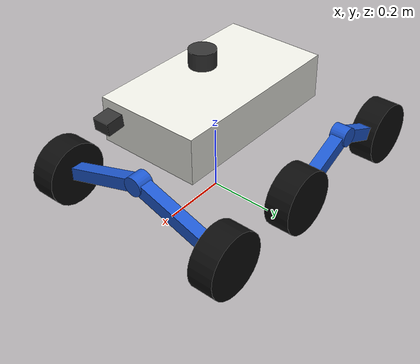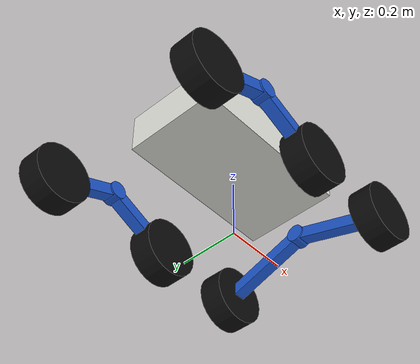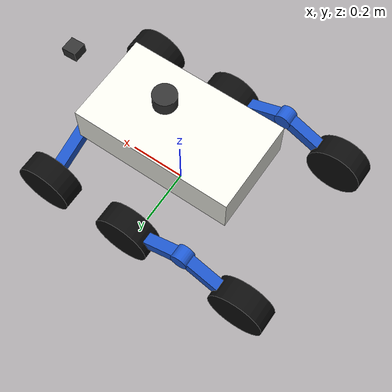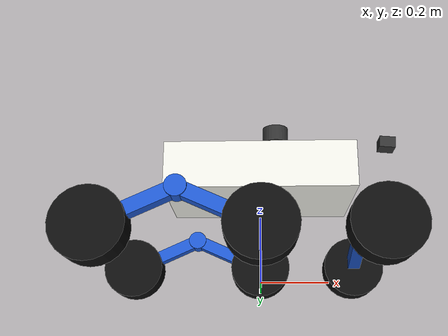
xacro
<?xml version="1.0"?>
<robot name="mars_rover" xmlns:xacro="http://www.ros.org/wiki/xacro">

  <xacro:include filename="$(find mars_rover_description)/urdf/materials.xacro"/>
  <xacro:include filename="$(find mars_rover_description)/urdf/triple_rocker.xacro"/>
  <xacro:include filename="$(find mars_rover_description)/urdf/sensors.xacro"/>

  <!-- Chassis geometry -->
  <xacro:property name="chassis_length" value="0.56"/>
  <xacro:property name="chassis_width"  value="0.32"/>
  <xacro:property name="chassis_height" value="0.14"/>
  <xacro:property name="chassis_mass"   value="10.0"/>

  <!-- Suspension Y offsets from centreline -->
  <xacro:property name="suspension_y"   value="0.30"/>

  <!-- ── BASE FOOTPRINT ──────────────────────────────────────────── -->
  <!-- Tiny inertia required: gz-sim treats zero-mass canonical links as
       static/weightless, which disables gravity for the entire model. -->
  <link name="base_footprint">
    <inertial>
      <mass value="0.001"/>
      <inertia ixx="0.000001" ixy="0" ixz="0"
               iyy="0.000001" iyz="0"
               izz="0.000001"/>
    </inertial>
  </link>

  <joint name="base_footprint_joint" type="fixed">
    <parent link="base_footprint"/>
    <child  link="base_link"/>
    <!-- z = wheel_radius(0.10) + rear_pivot_drop(0.12) + rear_arm_z_drop(0.10) = 0.32 m
         ensures wheel centres sit at exactly wheel_radius above footprint -->
    <origin xyz="0 0 0.32" rpy="0 0 0"/>
  </joint>

  <!-- ── CHASSIS / BASE_LINK ─────────────────────────────────────── -->
  <link name="base_link">
    <visual>
      <origin xyz="0 0 0" rpy="0 0 0"/>
      <geometry>
        <box size="${chassis_length} ${chassis_width} ${chassis_height}"/>
      </geometry>
      <material name="rover_chassis"/>
    </visual>
    <collision>
      <origin xyz="0 0 0" rpy="0 0 0"/>
      <geometry>
        <box size="${chassis_length} ${chassis_width} ${chassis_height}"/>
      </geometry>
    </collision>
    <inertial>
      <!-- CoM offset: forward sensors (lidar 0.2kg×0.05m + camera 0.1kg×0.30m) = +0.056 kg·m
           offset = -0.056 / 10.0 ≈ -0.006 m rearward -->
      <origin xyz="-0.006 0 0" rpy="0 0 0"/>
      <mass value="${chassis_mass}"/>
      <inertia
        ixx="${chassis_mass*(chassis_width*chassis_width + chassis_height*chassis_height)/12}"
        ixy="0" ixz="0"
        iyy="${chassis_mass*(chassis_length*chassis_length + chassis_height*chassis_height)/12}"
        iyz="0"
        izz="${chassis_mass*(chassis_length*chassis_length + chassis_width*chassis_width)/12}"/>
    </inertial>
  </link>

  <!-- ── LEFT REAR ROCKER ──────────────────────────────────────────── -->
  <xacro:rear_rocker_side
    side="left"
    y_offset="${suspension_y}"
    flip="1.0"/>

  <!-- ── RIGHT REAR ROCKER ─────────────────────────────────────────── -->
  <xacro:rear_rocker_side
    side="right"
    y_offset="${-suspension_y}"
    flip="-1.0"/>
  <!-- Note: front_rocker_link + left_front/right_front wheels are
       instantiated automatically by the triple_rocker.xacro include. -->

  <!-- ── GAZEBO PLUGINS ─────────────────────────────────────────── -->

  <!-- Chassis colour override for Gazebo (white-cream, high contrast) -->
  <gazebo reference="base_link">
    <visual>
      <material>
        <ambient>0.93 0.93 0.90 1</ambient>
        <diffuse>0.93 0.93 0.90 1</diffuse>
        <specular>0.4 0.4 0.4 1</specular>
      </material>
    </visual>
    <!-- Contact: low friction so the chassis can slide over terrain if it bottoms out -->
    <mu1>0.3</mu1>
    <mu2>0.3</mu2>
    <kp>500000.0</kp>
    <kd>50.0</kd>
  </gazebo>

  <gazebo>
    <self_collide>true</self_collide>
  </gazebo>

  <!-- ── Steering position controllers (PID) ── -->
  <xacro:macro name="steer_ctrl" params="wheel_name">
    <gazebo>
      <plugin filename="libgz-sim-joint-position-controller-system.so"
              name="gz::sim::systems::JointPositionController">
        <joint_name>${wheel_name}_steer_joint</joint_name>
        <topic>/gz/steer/${wheel_name}</topic>
        <p_gain>10.0</p_gain>
        <i_gain>0.1</i_gain>
        <d_gain>0.5</d_gain>
        <i_max>1.0</i_max>
        <i_min>-1.0</i_min>
        <cmd_max>10.0</cmd_max>
        <cmd_min>-10.0</cmd_min>
      </plugin>
    </gazebo>
  </xacro:macro>

  <!-- ── Drive velocity controllers ── -->
  <xacro:macro name="drive_ctrl" params="wheel_name">
    <gazebo>
      <plugin filename="libgz-sim-joint-controller-system.so"
              name="gz::sim::systems::JointController">
        <joint_name>${wheel_name}_wheel_joint</joint_name>
        <topic>/gz/drive/${wheel_name}</topic>
        <use_force_commands>false</use_force_commands>
      </plugin>
    </gazebo>
  </xacro:macro>

  <xacro:steer_ctrl wheel_name="left_front"/>
  <xacro:steer_ctrl wheel_name="right_front"/>
  <xacro:steer_ctrl wheel_name="left_mid"/>
  <xacro:steer_ctrl wheel_name="right_mid"/>
  <xacro:steer_ctrl wheel_name="left_rear"/>
  <xacro:steer_ctrl wheel_name="right_rear"/>

  <xacro:drive_ctrl wheel_name="left_front"/>
  <xacro:drive_ctrl wheel_name="right_front"/>
  <xacro:drive_ctrl wheel_name="left_mid"/>
  <xacro:drive_ctrl wheel_name="right_mid"/>
  <xacro:drive_ctrl wheel_name="left_rear"/>
  <xacro:drive_ctrl wheel_name="right_rear"/>

  <!-- Joint state publisher (publishes all rocker/wheel joint states) -->
  <gazebo>
    <plugin filename="libgz-sim-joint-state-publisher-system.so"
            name="gz::sim::systems::JointStatePublisher">
      <topic>joint_states</topic>
    </plugin>
  </gazebo>

</robot>

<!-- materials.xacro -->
<robot xmlns:xacro="http://www.ros.org/wiki/xacro">

  <!-- Rover body: bright white-cream for high contrast against Mars terrain -->
  <material name="rover_chassis">
    <color rgba="0.93 0.93 0.90 1.0"/>
  </material>
  <!-- Suspension arms: vivid cobalt blue — stands out against orange terrain -->
  <material name="rover_suspension">
    <color rgba="0.12 0.35 0.82 1.0"/>
  </material>
  <material name="dark_grey">
    <color rgba="0.2 0.2 0.2 1.0"/>
  </material>
  <material name="light_grey">
    <color rgba="0.6 0.6 0.6 1.0"/>
  </material>
  <material name="black">
    <color rgba="0.05 0.05 0.05 1.0"/>
  </material>
  <material name="blue">
    <color rgba="0.1 0.4 0.9 1.0"/>
  </material>
  <material name="red">
    <color rgba="0.9 0.1 0.1 1.0"/>
  </material>
  <!-- Keep mars_orange for any external references -->
  <material name="mars_orange">
    <color rgba="0.78 0.42 0.14 1.0"/>
  </material>

</robot>

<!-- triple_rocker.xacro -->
<robot xmlns:xacro="http://www.ros.org/wiki/xacro">

  <xacro:include filename="$(find mars_rover_description)/urdf/wheel.xacro"/>

  <!-- ── Rear side rocker geometry ──────────────────────────────────── -->
  <!-- Each rear rocker is V-shaped (viewed from side); pivot is the apex -->
  <xacro:property name="rear_pivot_x"     value="-0.22"/>  <!-- chassis X of pivot (−arm_reach → mid wheel at x=0) -->
  <xacro:property name="rear_pivot_drop"  value="0.12"/>   <!-- Z below base_link (clears chassis bottom)           -->
  <xacro:property name="rear_arm_x_reach" value="0.22"/>   <!-- horizontal arm reach                                -->
  <xacro:property name="rear_arm_z_drop"  value="0.10"/>   <!-- vertical drop pivot→wheel                          -->
  <!-- derived -->
  <xacro:property name="rear_arm_length"
    value="${sqrt(rear_arm_x_reach**2 + rear_arm_z_drop**2)}"/>
  <xacro:property name="rear_arm_pitch"
    value="${atan2(rear_arm_z_drop, rear_arm_x_reach)}"/>

  <!-- ── Front rocker geometry ──────────────────────────────────────── -->
  <!-- Single transverse rocker; pivot on chassis front centre; V-shaped
       (viewed from front) — left and right arms angle outward and down -->
  <xacro:property name="front_pivot_x"     value="0.32"/>   <!-- extruded past chassis front (front face at +0.28) -->
  <xacro:property name="front_pivot_drop"  value="0.12"/>   <!-- Z below base_link (matches rear_pivot_drop)       -->
  <xacro:property name="front_arm_y_reach" value="0.30"/>   <!-- matches suspension_y                              -->
  <xacro:property name="front_arm_z_drop"  value="0.10"/>   <!-- vertical drop pivot→wheel                        -->
  <!-- derived -->
  <xacro:property name="front_arm_length"
    value="${sqrt(front_arm_y_reach**2 + front_arm_z_drop**2)}"/>
  <xacro:property name="front_arm_pitch"
    value="${atan2(front_arm_z_drop, front_arm_y_reach)}"/>

  <!-- ── Shared arm cross-section & hub ─────────────────────────────── -->
  <xacro:property name="arm_w"    value="0.04"/>  <!-- arm box width  -->
  <xacro:property name="arm_h"    value="0.04"/>  <!-- arm box height -->
  <xacro:property name="hub_r"    value="0.030"/> <!-- pivot hub cylinder radius -->
  <xacro:property name="hub_len"  value="0.05"/>  <!-- pivot hub cylinder length -->
  <xacro:property name="rear_rocker_mass"  value="0.6"/>
  <xacro:property name="front_rocker_mass" value="0.5"/>

  <xacro:macro name="rear_rocker_side" params="side y_offset flip">

    <link name="${side}_rear_rocker_link">
      <!-- pivot hub: cylinder aligned with Y axis (joint axis) -->
      <visual>
        <origin xyz="0 0 0" rpy="${pi/2} 0 0"/>
        <geometry><cylinder radius="${hub_r}" length="${hub_len}"/></geometry>
        <material name="rover_suspension"/>
      </visual>

      <!-- forward arm: pivot → mid wheel (forward and downward) -->
      <!-- box centre at midpoint; pitched so +X axis points toward mid wheel -->
      <visual>
        <origin xyz="${rear_arm_x_reach/2} 0 ${-rear_arm_z_drop/2}"
                rpy="0 ${rear_arm_pitch} 0"/>
        <geometry><box size="${rear_arm_length} ${arm_w} ${arm_h}"/></geometry>
        <material name="rover_suspension"/>
      </visual>

      <!-- rearward arm: pivot → rear wheel (backward and downward) -->
      <visual>
        <origin xyz="${-rear_arm_x_reach/2} 0 ${-rear_arm_z_drop/2}"
                rpy="0 ${pi - rear_arm_pitch} 0"/>
        <geometry><box size="${rear_arm_length} ${arm_w} ${arm_h}"/></geometry>
        <material name="rover_suspension"/>
      </visual>

      <collision>
        <origin xyz="0 0 ${-rear_arm_z_drop/2}" rpy="0 0 0"/>
        <geometry>
          <box size="${2*rear_arm_x_reach} ${arm_w} ${rear_arm_z_drop}"/>
        </geometry>
      </collision>
      <inertial>
        <mass value="${rear_rocker_mass}"/>
        <inertia
          ixx="${rear_rocker_mass*(arm_w**2            + rear_arm_z_drop**2)/12}"
          ixy="0" ixz="0"
          iyy="${rear_rocker_mass*((2*rear_arm_x_reach)**2 + rear_arm_z_drop**2)/12}"
          iyz="0"
          izz="${rear_rocker_mass*((2*rear_arm_x_reach)**2 + arm_w**2)/12}"/>
      </inertial>
    </link>

    <!-- Pivot anchored to chassis side, revolute Y (pitch) -->
    <joint name="${side}_rear_rocker_joint" type="revolute">
      <parent link="base_link"/>
      <child  link="${side}_rear_rocker_link"/>
      <origin xyz="${rear_pivot_x} ${y_offset} ${-rear_pivot_drop}" rpy="0 0 0"/>
      <axis xyz="0 1 0"/>
      <limit lower="-0.35" upper="0.35" effort="30" velocity="2"/>
      <dynamics damping="30.0" friction="2.0"/>
    </joint>

    <!-- Spring return to level -->
    <gazebo reference="${side}_rear_rocker_joint">
      <axis>
        <dynamics>
          <spring_reference>0</spring_reference>
          <spring_stiffness>300</spring_stiffness>
          <damping>30.0</damping>
          <friction>2.0</friction>
        </dynamics>
      </axis>
    </gazebo>

    <!-- Gazebo colour: cobalt blue -->
    <gazebo reference="${side}_rear_rocker_link">
      <visual>
        <material>
          <ambient>0.12 0.35 0.82 1</ambient>
          <diffuse>0.12 0.35 0.82 1</diffuse>
          <specular>0.2 0.2 0.2 1</specular>
        </material>
      </visual>
      <!-- Rocker arms can drag on terrain: low friction, stiff contact -->
      <mu1>0.3</mu1>
      <mu2>0.3</mu2>
      <kp>500000.0</kp>
      <kd>50.0</kd>
      <collision>
        <surface>
          <contact>
            <collide_bitmask>0x0001</collide_bitmask>
          </contact>
        </surface>
      </collision>
    </gazebo>

    <!-- Mid wheel at forward arm end -->
    <xacro:wheel prefix="${side}_mid"
                 parent="${side}_rear_rocker_link"
                 x="${rear_arm_x_reach}" y="0" z="${-rear_arm_z_drop}"
                 flip="${flip}"/>

    <!-- Rear wheel at rearward arm end -->
    <xacro:wheel prefix="${side}_rear"
                 parent="${side}_rear_rocker_link"
                 x="${-rear_arm_x_reach}" y="0" z="${-rear_arm_z_drop}"
                 flip="${flip}"/>

  </xacro:macro>

  <link name="front_rocker_link">
    <!-- pivot hub: cylinder aligned with X axis (joint axis) -->
    <visual>
      <origin xyz="0 0 0" rpy="0 ${pi/2} 0"/>
      <geometry><cylinder radius="${hub_r}" length="${hub_len}"/></geometry>
      <material name="rover_suspension"/>
    </visual>

    <!-- left arm: pivot → left_front wheel (leftward and downward)
         rpy = (0, front_arm_pitch, π/2) orients box along (0,+1,-slope) -->
    <visual>
      <origin xyz="0 ${front_arm_y_reach/2} ${-front_arm_z_drop/2}"
              rpy="0 ${front_arm_pitch} ${pi/2}"/>
      <geometry><box size="${front_arm_length} ${arm_w} ${arm_h}"/></geometry>
      <material name="rover_suspension"/>
    </visual>

    <!-- right arm: pivot → right_front wheel (rightward and downward) -->
    <visual>
      <origin xyz="0 ${-front_arm_y_reach/2} ${-front_arm_z_drop/2}"
              rpy="0 ${front_arm_pitch} ${-pi/2}"/>
      <geometry><box size="${front_arm_length} ${arm_w} ${arm_h}"/></geometry>
      <material name="rover_suspension"/>
    </visual>

    <collision>
      <origin xyz="0 0 ${-front_arm_z_drop/2}" rpy="0 0 0"/>
      <geometry>
        <box size="${arm_h} ${2*front_arm_y_reach} ${front_arm_z_drop}"/>
      </geometry>
    </collision>
    <inertial>
      <mass value="${front_rocker_mass}"/>
      <inertia
        ixx="${front_rocker_mass*((2*front_arm_y_reach)**2 + front_arm_z_drop**2)/12}"
        ixy="0" ixz="0"
        iyy="${front_rocker_mass*(arm_h**2                 + front_arm_z_drop**2)/12}"
        iyz="0"
        izz="${front_rocker_mass*((2*front_arm_y_reach)**2 + arm_h**2)/12}"/>
    </inertial>
  </link>

  <!-- Pivot at chassis front centre, revolute X (roll) -->
  <joint name="front_rocker_joint" type="revolute">
    <parent link="base_link"/>
    <child  link="front_rocker_link"/>
    <origin xyz="${front_pivot_x} 0 ${-front_pivot_drop}" rpy="0 0 0"/>
    <axis xyz="1 0 0"/>
    <limit lower="-0.35" upper="0.35" effort="30" velocity="2"/>
    <dynamics damping="20.0" friction="1.5"/>
  </joint>

  <!-- Spring return to level -->
  <gazebo reference="front_rocker_joint">
    <axis>
      <dynamics>
        <spring_reference>0</spring_reference>
        <spring_stiffness>200</spring_stiffness>
        <damping>20.0</damping>
        <friction>1.5</friction>
      </dynamics>
    </axis>
  </gazebo>

  <!-- Gazebo colour: cobalt blue -->
  <gazebo reference="front_rocker_link">
    <visual>
      <material>
        <ambient>0.12 0.35 0.82 1</ambient>
        <diffuse>0.12 0.35 0.82 1</diffuse>
        <specular>0.2 0.2 0.2 1</specular>
      </material>
    </visual>
    <mu1>0.3</mu1>
    <mu2>0.3</mu2>
    <kp>500000.0</kp>
    <kd>50.0</kd>
    <!-- Same bitmask as rear rocker arms (0x0001): wheels (0x0002) won't
         self-collide with this arm after the steer_link chain insertion. -->
    <collision>
      <surface>
        <contact>
          <collide_bitmask>0x0001</collide_bitmask>
        </contact>
      </surface>
    </collision>
  </gazebo>

  <!-- Left front wheel -->
  <xacro:wheel prefix="left_front"
               parent="front_rocker_link"
               x="0" y="${front_arm_y_reach}" z="${-front_arm_z_drop}"
               flip="1.0"/>

  <!-- Right front wheel -->
  <xacro:wheel prefix="right_front"
               parent="front_rocker_link"
               x="0" y="${-front_arm_y_reach}" z="${-front_arm_z_drop}"
               flip="-1.0"/>

</robot>

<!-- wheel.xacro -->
<robot xmlns:xacro="http://www.ros.org/wiki/xacro">

  <xacro:property name="wheel_radius"    value="0.10"/>   <!-- 20 cm diameter -->
  <xacro:property name="wheel_width"     value="0.08"/>
  <xacro:property name="wheel_mass"      value="1.5"/>

  <xacro:macro name="wheel" params="prefix parent x y z flip">

    <!-- Steering hub: lightweight link between the rocker arm and the wheel.
         Its joint (steer_joint) rotates around Z to aim the wheel for swerve / crab-walking. -->
    <link name="${prefix}_steer_link">
      <inertial>
        <mass value="0.1"/>
        <inertia ixx="0.00005" ixy="0" ixz="0"
                 iyy="0.00005" iyz="0"
                 izz="0.00005"/>
      </inertial>
    </link>

    <!-- Steering joint: revolute Z — sets wheel heading for swerve / lateral motion -->
    <joint name="${prefix}_steer_joint" type="revolute">
      <parent link="${parent}"/>
      <child  link="${prefix}_steer_link"/>
      <origin xyz="${x} ${y} ${z}" rpy="0 0 0"/>
      <axis xyz="0 0 1"/>
      <limit lower="${-pi/2}" upper="${pi/2}" effort="10.0" velocity="2.0"/>
      <dynamics damping="1.0" friction="0.3"/>
    </joint>

    <link name="${prefix}_wheel_link">
      <visual>
        <origin xyz="0 0 0" rpy="${pi/2} 0 0"/>
        <geometry>
          <cylinder radius="${wheel_radius}" length="${wheel_width}"/>
        </geometry>
        <material name="black"/>
      </visual>
      <collision>
        <origin xyz="0 0 0" rpy="${pi/2} 0 0"/>
        <geometry>
          <cylinder radius="${wheel_radius}" length="${wheel_width}"/>
        </geometry>
      </collision>
      <inertial>
        <mass value="${wheel_mass}"/>
        <!-- Solid cylinder: Ixx=Iyy = m(3r²+h²)/12, Izz = mr²/2 -->
        <inertia
          ixx="${wheel_mass*(3*wheel_radius*wheel_radius + wheel_width*wheel_width)/12}"
          ixy="0" ixz="0"
          iyy="${wheel_mass*(3*wheel_radius*wheel_radius + wheel_width*wheel_width)/12}"
          iyz="0"
          izz="${wheel_mass*wheel_radius*wheel_radius/2}"/>
      </inertial>
    </link>

    <!-- Drive joint: spins the wheel; origin now 0,0,0 (position set by steer_joint above) -->
    <joint name="${prefix}_wheel_joint" type="continuous">
      <parent link="${prefix}_steer_link"/>
      <child  link="${prefix}_wheel_link"/>
      <origin xyz="0 0 0" rpy="0 0 0"/>
      <axis xyz="0 1 0"/>
      <dynamics damping="0.1" friction="0.05"/>
    </joint>

    <!-- Gazebo friction / wheel properties — high-traction hill-climbing setup -->
    <gazebo reference="${prefix}_wheel_link">
      <material>Gazebo/Black</material>
      <!-- High mu for steep slope grip: max climbable angle = atan(mu/1) ≈ 76° -->
      <mu1>4.0</mu1>
      <mu2>4.0</mu2>
      <!-- Stiff contact so wheels don't sink through mesh terrain faces -->
      <kp>2000000.0</kp>
      <kd>100.0</kd>
      <!-- Deeper min-depth stabilises contact on triangulated mesh terrain -->
      <minDepth>0.005</minDepth>
      <maxVel>100.0</maxVel>
      <!-- No contact slip — every newton of friction is used for propulsion -->
      <slip1>0.0</slip1>
      <slip2>0.0</slip2>
      <collision>
        <surface>
          <contact>
            <collide_bitmask>0x0002</collide_bitmask>
          </contact>
        </surface>
      </collision>
    </gazebo>

  </xacro:macro>

</robot>

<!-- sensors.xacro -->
<robot xmlns:xacro="http://www.ros.org/wiki/xacro">

  <!-- ── 3D LIDAR (VLP-16 style, 16 vertical channels) ──────────────── -->
  <link name="lidar_link">
    <visual>
      <origin xyz="0 0 0" rpy="0 0 0"/>
      <geometry><cylinder radius="0.04" length="0.05"/></geometry>
      <material name="dark_grey"/>
    </visual>
    <collision>
      <origin xyz="0 0 0" rpy="0 0 0"/>
      <geometry><cylinder radius="0.04" length="0.05"/></geometry>
    </collision>
    <inertial>
      <mass value="0.2"/>
      <inertia ixx="0.0001" ixy="0" ixz="0" iyy="0.0001" iyz="0" izz="0.0001"/>
    </inertial>
  </link>

  <joint name="lidar_joint" type="fixed">
    <parent link="base_link"/>
    <child  link="lidar_link"/>
    <!-- Chassis top = z+0.10 m. Mount 5 cm above chassis top (z=+0.15).
         Slightly forward (x=0.05) improves front-arc terrain coverage. -->
    <origin xyz="0.05 0.0 0.15" rpy="0 0 0"/>
  </joint>

  <gazebo reference="lidar_link">
    <sensor name="lidar" type="gpu_lidar">
      <topic>scan</topic>
      <update_rate>15</update_rate>
      <lidar>
        <scan>
          <horizontal>
            <samples>720</samples>
            <resolution>1</resolution>
            <min_angle>-3.14159</min_angle>
            <max_angle>3.14159</max_angle>
          </horizontal>
          <!-- 16 vertical channels (±15° = VLP-16 style) -->
          <vertical>
            <samples>16</samples>
            <resolution>1</resolution>
            <min_angle>-0.2618</min_angle>
            <max_angle>0.2618</max_angle>
          </vertical>
        </scan>
        <range>
          <min>0.10</min>
          <max>25.0</max>
          <resolution>0.01</resolution>
        </range>
        <noise>
          <type>gaussian</type>
          <mean>0.0</mean>
          <stddev>0.005</stddev>
        </noise>
      </lidar>
      <always_on>true</always_on>
      <visualize>false</visualize>
    </sensor>
  </gazebo>

  <!-- ── FRONT RGB CAMERA ────────────────────────────────────────────── -->
  <link name="camera_link">
    <visual>
      <origin xyz="0 0 0" rpy="0 0 0"/>
      <geometry><box size="0.05 0.05 0.035"/></geometry>
      <material name="dark_grey"/>
    </visual>
    <collision>
      <origin xyz="0 0 0" rpy="0 0 0"/>
      <geometry><box size="0.05 0.05 0.035"/></geometry>
    </collision>
    <inertial>
      <mass value="0.1"/>
      <inertia ixx="0.0001" ixy="0" ixz="0" iyy="0.0001" iyz="0" izz="0.0001"/>
    </inertial>
  </link>

  <joint name="camera_joint" type="fixed">
    <parent link="base_link"/>
    <child  link="camera_link"/>
    <!-- Front face of chassis = x+0.425 m. Mount at x=0.40 (just inside front
         face), z=0.12 (2 cm above chassis top), 5° down-tilt for terrain view. -->
    <origin xyz="0.40 0.0 0.12" rpy="0 0.087 0"/>
  </joint>

  <!-- Optical frame (ROS convention: Z forward, X right, Y down) -->
  <link name="camera_optical_frame"/>
  <joint name="camera_optical_joint" type="fixed">
    <parent link="camera_link"/>
    <child  link="camera_optical_frame"/>
    <origin xyz="0 0 0" rpy="${-pi/2} 0 ${-pi/2}"/>
  </joint>

  <!-- RGB camera sensor: uses ogre2 + headless-rendering for EGL off-screen
       rendering on WSL2. Publishes /camera/image and /camera/camera_info. -->
  <gazebo reference="camera_link">
    <sensor name="front_camera" type="camera">
      <topic>camera</topic>
      <update_rate>15</update_rate>
      <camera>
        <horizontal_fov>1.2217</horizontal_fov>
        <image>
          <width>640</width>
          <height>480</height>
          <format>R8G8B8</format>
        </image>
        <clip><near>0.05</near><far>15.0</far></clip>
        <noise><type>gaussian</type><mean>0.0</mean><stddev>0.002</stddev></noise>
      </camera>
      <always_on>true</always_on>
      <visualize>false</visualize>
    </sensor>
  </gazebo>

  <!-- ── IMU ─────────────────────────────────────────────────────── -->
  <link name="imu_link">
    <visual>
      <origin xyz="0 0 0" rpy="0 0 0"/>
      <geometry><box size="0.03 0.03 0.01"/></geometry>
      <material name="blue"/>
    </visual>
    <collision>
      <origin xyz="0 0 0" rpy="0 0 0"/>
      <geometry><box size="0.03 0.03 0.01"/></geometry>
    </collision>
    <inertial>
      <mass value="0.05"/>
      <inertia ixx="0.0001" ixy="0" ixz="0" iyy="0.0001" iyz="0" izz="0.0001"/>
    </inertial>
  </link>

  <joint name="imu_joint" type="fixed">
    <parent link="base_link"/>
    <child  link="imu_link"/>
    <origin xyz="0.0 0.0 0.05" rpy="0 0 0"/>
  </joint>

  <gazebo reference="imu_link">
    <sensor name="imu_sensor" type="imu">
      <topic>imu/data</topic>
      <update_rate>200</update_rate>
      <imu>
        <angular_velocity>
          <x><noise type="gaussian"><mean>0</mean><stddev>0.009</stddev></noise></x>
          <y><noise type="gaussian"><mean>0</mean><stddev>0.009</stddev></noise></y>
          <z><noise type="gaussian"><mean>0</mean><stddev>0.009</stddev></noise></z>
        </angular_velocity>
        <linear_acceleration>
          <x><noise type="gaussian"><mean>0</mean><stddev>0.021</stddev></noise></x>
          <y><noise type="gaussian"><mean>0</mean><stddev>0.021</stddev></noise></y>
          <z><noise type="gaussian"><mean>0</mean><stddev>0.021</stddev></noise></z>
        </linear_acceleration>
      </imu>
      <always_on>true</always_on>
    </sensor>
  </gazebo>

</robot>
